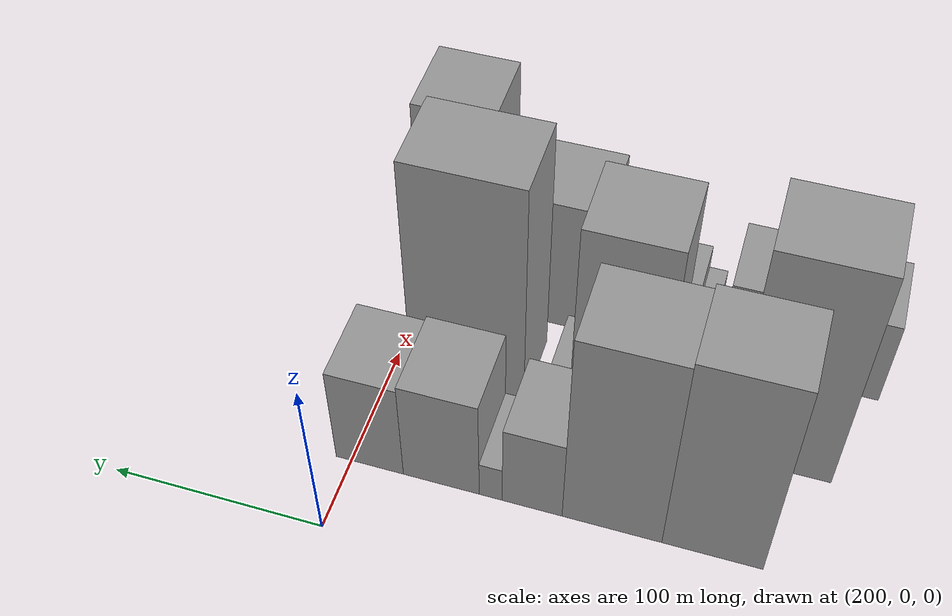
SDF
<sdf version="1.6">
 <world name="default">
  <model name="building_170">
   <static>1</static>
   <pose>256.0000 -166.0962 0 0.000000 0.000000 0.000000</pose>
   <link name="link">
    <pose>0 0 64.50 0 0 0</pose>
    <collision name="collision"><geometry><box><size>40.0000 44.4024 129.0000</size></box></geometry></collision>
    <visual name="visual">
     <cast_shadows>0</cast_shadows>
     <geometry><box><size>40.0000 44.4024 129.0000</size></box></geometry>
     <material>
      <script>
       <uri>model://grey_wall/materials/scripts</uri>
       <uri>model://grey_wall/materials/textures</uri>
       <name>vrc/grey_wall</name>
      </script>
     </material>
    </visual>
   </link>
  </model>
  <model name="building_171">
   <static>1</static>
   <pose>256.0000 -121.4034 0 0.000000 0.000000 0.000000</pose>
   <link name="link">
    <pose>0 0 63.00 0 0 0</pose>
    <collision name="collision"><geometry><box><size>40.0000 44.9833 126.0000</size></box></geometry></collision>
    <visual name="visual">
     <cast_shadows>0</cast_shadows>
     <geometry><box><size>40.0000 44.9833 126.0000</size></box></geometry>
     <material>
      <script>
       <uri>model://grey_wall/materials/scripts</uri>
       <uri>model://grey_wall/materials/textures</uri>
       <name>vrc/grey_wall</name>
      </script>
     </material>
    </visual>
   </link>
  </model>
  <model name="building_172">
   <static>1</static>
   <pose>256.0000 -85.1484 0 0.000000 0.000000 0.000000</pose>
   <link name="link">
    <pose>0 0 27.00 0 0 0</pose>
    <collision name="collision"><geometry><box><size>40.0000 27.5268 54.0000</size></box></geometry></collision>
    <visual name="visual">
     <cast_shadows>0</cast_shadows>
     <geometry><box><size>40.0000 27.5268 54.0000</size></box></geometry>
     <material>
      <script>
       <uri>model://grey_wall/materials/scripts</uri>
       <uri>model://grey_wall/materials/textures</uri>
       <name>vrc/grey_wall</name>
      </script>
     </material>
    </visual>
   </link>
  </model>
  <model name="building_173">
   <static>1</static>
   <pose>256.0000 -66.0285 0 0.000000 0.000000 0.000000</pose>
   <link name="link">
    <pose>0 0 12.00 0 0 0</pose>
    <collision name="collision"><geometry><box><size>40.0000 10.7129 24.0000</size></box></geometry></collision>
    <visual name="visual">
     <cast_shadows>0</cast_shadows>
     <geometry><box><size>40.0000 10.7129 24.0000</size></box></geometry>
     <material>
      <script>
       <uri>model://grey_wall/materials/scripts</uri>
       <uri>model://grey_wall/materials/textures</uri>
       <name>vrc/grey_wall</name>
      </script>
     </material>
    </visual>
   </link>
  </model>
  <model name="building_174">
   <static>1</static>
   <pose>256.0000 -42.7188 0 0.000000 0.000000 0.000000</pose>
   <link name="link">
    <pose>0 0 33.00 0 0 0</pose>
    <collision name="collision"><geometry><box><size>40.0000 35.9066 66.0000</size></box></geometry></collision>
    <visual name="visual">
     <cast_shadows>0</cast_shadows>
     <geometry><box><size>40.0000 35.9066 66.0000</size></box></geometry>
     <material>
      <script>
       <uri>model://grey_wall/materials/scripts</uri>
       <uri>model://grey_wall/materials/textures</uri>
       <name>vrc/grey_wall</name>
      </script>
     </material>
    </visual>
   </link>
  </model>
  <model name="building_175">
   <static>1</static>
   <pose>256.0000 -8.5671 0 0.000000 0.000000 0.000000</pose>
   <link name="link">
    <pose>0 0 31.50 0 0 0</pose>
    <collision name="collision"><geometry><box><size>40.0000 32.3968 63.0000</size></box></geometry></collision>
    <visual name="visual">
     <cast_shadows>0</cast_shadows>
     <geometry><box><size>40.0000 32.3968 63.0000</size></box></geometry>
     <material>
      <script>
       <uri>model://grey_wall/materials/scripts</uri>
       <uri>model://grey_wall/materials/textures</uri>
       <name>vrc/grey_wall</name>
      </script>
     </material>
    </visual>
   </link>
  </model>
  <model name="building_223">
   <static>1</static>
   <pose>308.0000 -185.8009 0 0.000000 0.000000 0.000000</pose>
   <link name="link">
    <pose>0 0 70.50 0 0 0</pose>
    <collision name="collision"><geometry><box><size>40.0000 48.2161 141.0000</size></box></geometry></collision>
    <visual name="visual">
     <cast_shadows>0</cast_shadows>
     <geometry><box><size>40.0000 48.2161 141.0000</size></box></geometry>
     <material>
      <script>
       <uri>model://grey_wall/materials/scripts</uri>
       <uri>model://grey_wall/materials/textures</uri>
       <name>vrc/grey_wall</name>
      </script>
     </material>
    </visual>
   </link>
  </model>
  <model name="building_224">
   <static>1</static>
   <pose>308.0000 -149.0746 0 0.000000 0.000000 0.000000</pose>
   <link name="link">
    <pose>0 0 15.00 0 0 0</pose>
    <collision name="collision"><geometry><box><size>40.0000 17.2364 30.0000</size></box></geometry></collision>
    <visual name="visual">
     <cast_shadows>0</cast_shadows>
     <geometry><box><size>40.0000 17.2364 30.0000</size></box></geometry>
     <material>
      <script>
       <uri>model://grey_wall/materials/scripts</uri>
       <uri>model://grey_wall/materials/textures</uri>
       <name>vrc/grey_wall</name>
      </script>
     </material>
    </visual>
   </link>
  </model>
  <model name="building_225">
   <static>1</static>
   <pose>308.0000 -109.0099 0 0.000000 0.000000 0.000000</pose>
   <link name="link">
    <pose>0 0 64.50 0 0 0</pose>
    <collision name="collision"><geometry><box><size>40.0000 42.8931 129.0000</size></box></geometry></collision>
    <visual name="visual">
     <cast_shadows>0</cast_shadows>
     <geometry><box><size>40.0000 42.8931 129.0000</size></box></geometry>
     <material>
      <script>
       <uri>model://grey_wall/materials/scripts</uri>
       <uri>model://grey_wall/materials/textures</uri>
       <name>vrc/grey_wall</name>
      </script>
     </material>
    </visual>
   </link>
  </model>
  <model name="building_226">
   <static>1</static>
   <pose>308.0000 -81.7986 0 0.000000 0.000000 0.000000</pose>
   <link name="link">
    <pose>0 0 12.00 0 0 0</pose>
    <collision name="collision"><geometry><box><size>40.0000 11.5295 24.0000</size></box></geometry></collision>
    <visual name="visual">
     <cast_shadows>0</cast_shadows>
     <geometry><box><size>40.0000 11.5295 24.0000</size></box></geometry>
     <material>
      <script>
       <uri>model://grey_wall/materials/scripts</uri>
       <uri>model://grey_wall/materials/textures</uri>
       <name>vrc/grey_wall</name>
      </script>
     </material>
    </visual>
   </link>
  </model>
  <model name="building_227">
   <static>1</static>
   <pose>308.0000 -38.1745 0 0.000000 0.000000 0.000000</pose>
   <link name="link">
    <pose>0 0 72.00 0 0 0</pose>
    <collision name="collision"><geometry><box><size>40.0000 55.7187 144.0000</size></box></geometry></collision>
    <visual name="visual">
     <cast_shadows>0</cast_shadows>
     <geometry><box><size>40.0000 55.7187 144.0000</size></box></geometry>
     <material>
      <script>
       <uri>model://grey_wall/materials/scripts</uri>
       <uri>model://grey_wall/materials/textures</uri>
       <name>vrc/grey_wall</name>
      </script>
     </material>
    </visual>
   </link>
  </model>
  <model name="building_271">
   <static>1</static>
   <pose>360.0000 -208.7038 0 0.000000 0.000000 0.000000</pose>
   <link name="link">
    <pose>0 0 27.00 0 0 0</pose>
    <collision name="collision"><geometry><box><size>40.0000 31.8835 54.0000</size></box></geometry></collision>
    <visual name="visual">
     <cast_shadows>0</cast_shadows>
     <geometry><box><size>40.0000 31.8835 54.0000</size></box></geometry>
     <material>
      <script>
       <uri>model://grey_wall/materials/scripts</uri>
       <uri>model://grey_wall/materials/textures</uri>
       <name>vrc/grey_wall</name>
      </script>
     </material>
    </visual>
   </link>
  </model>
  <model name="building_272">
   <static>1</static>
   <pose>360.0000 -185.1057 0 0.000000 0.000000 0.000000</pose>
   <link name="link">
    <pose>0 0 15.00 0 0 0</pose>
    <collision name="collision"><geometry><box><size>40.0000 15.3126 30.0000</size></box></geometry></collision>
    <visual name="visual">
     <cast_shadows>0</cast_shadows>
     <geometry><box><size>40.0000 15.3126 30.0000</size></box></geometry>
     <material>
      <script>
       <uri>model://grey_wall/materials/scripts</uri>
       <uri>model://grey_wall/materials/textures</uri>
       <name>vrc/grey_wall</name>
      </script>
     </material>
    </visual>
   </link>
  </model>
  <model name="building_273">
   <static>1</static>
   <pose>360.0000 -162.6305 0 0.000000 0.000000 0.000000</pose>
   <link name="link">
    <pose>0 0 28.50 0 0 0</pose>
    <collision name="collision"><geometry><box><size>40.0000 29.6378 57.0000</size></box></geometry></collision>
    <visual name="visual">
     <cast_shadows>0</cast_shadows>
     <geometry><box><size>40.0000 29.6378 57.0000</size></box></geometry>
     <material>
      <script>
       <uri>model://grey_wall/materials/scripts</uri>
       <uri>model://grey_wall/materials/textures</uri>
       <name>vrc/grey_wall</name>
      </script>
     </material>
    </visual>
   </link>
  </model>
  <model name="building_274">
   <static>1</static>
   <pose>360.0000 -138.2475 0 0.000000 0.000000 0.000000</pose>
   <link name="link">
    <pose>0 0 10.50 0 0 0</pose>
    <collision name="collision"><geometry><box><size>40.0000 9.1282 21.0000</size></box></geometry></collision>
    <visual name="visual">
     <cast_shadows>0</cast_shadows>
     <geometry><box><size>40.0000 9.1282 21.0000</size></box></geometry>
     <material>
      <script>
       <uri>model://grey_wall/materials/scripts</uri>
       <uri>model://grey_wall/materials/textures</uri>
       <name>vrc/grey_wall</name>
      </script>
     </material>
    </visual>
   </link>
  </model>
  <model name="building_275">
   <static>1</static>
   <pose>360.0000 -124.3843 0 0.000000 0.000000 0.000000</pose>
   <link name="link">
    <pose>0 0 18.00 0 0 0</pose>
    <collision name="collision"><geometry><box><size>40.0000 18.5983 36.0000</size></box></geometry></collision>
    <visual name="visual">
     <cast_shadows>0</cast_shadows>
     <geometry><box><size>40.0000 18.5983 36.0000</size></box></geometry>
     <material>
      <script>
       <uri>model://grey_wall/materials/scripts</uri>
       <uri>model://grey_wall/materials/textures</uri>
       <name>vrc/grey_wall</name>
      </script>
     </material>
    </visual>
   </link>
  </model>
  <model name="building_276">
   <static>1</static>
   <pose>360.0000 -105.3226 0 0.000000 0.000000 0.000000</pose>
   <link name="link">
    <pose>0 0 16.50 0 0 0</pose>
    <collision name="collision"><geometry><box><size>40.0000 19.5251 33.0000</size></box></geometry></collision>
    <visual name="visual">
     <cast_shadows>0</cast_shadows>
     <geometry><box><size>40.0000 19.5251 33.0000</size></box></geometry>
     <material>
      <script>
       <uri>model://grey_wall/materials/scripts</uri>
       <uri>model://grey_wall/materials/textures</uri>
       <name>vrc/grey_wall</name>
      </script>
     </material>
    </visual>
   </link>
  </model>
  <model name="building_277">
   <static>1</static>
   <pose>360.0000 -64.6850 0 0.000000 0.000000 0.000000</pose>
   <link name="link">
    <pose>0 0 42.00 0 0 0</pose>
    <collision name="collision"><geometry><box><size>40.0000 47.7500 84.0000</size></box></geometry></collision>
    <visual name="visual">
     <cast_shadows>0</cast_shadows>
     <geometry><box><size>40.0000 47.7500 84.0000</size></box></geometry>
     <material>
      <script>
       <uri>model://grey_wall/materials/scripts</uri>
       <uri>model://grey_wall/materials/textures</uri>
       <name>vrc/grey_wall</name>
      </script>
     </material>
    </visual>
   </link>
  </model>
  <model name="building_278">
   <static>1</static>
   <pose>360.0000 -16.7545 0 0.000000 0.000000 0.000000</pose>
   <link name="link">
    <pose>0 0 63.00 0 0 0</pose>
    <collision name="collision"><geometry><box><size>40.0000 38.1110 126.0000</size></box></geometry></collision>
    <visual name="visual">
     <cast_shadows>0</cast_shadows>
     <geometry><box><size>40.0000 38.1110 126.0000</size></box></geometry>
     <material>
      <script>
       <uri>model://grey_wall/materials/scripts</uri>
       <uri>model://grey_wall/materials/textures</uri>
       <name>vrc/grey_wall</name>
      </script>
     </material>
    </visual>
   </link>
  </model>
 </world>
</sdf>
